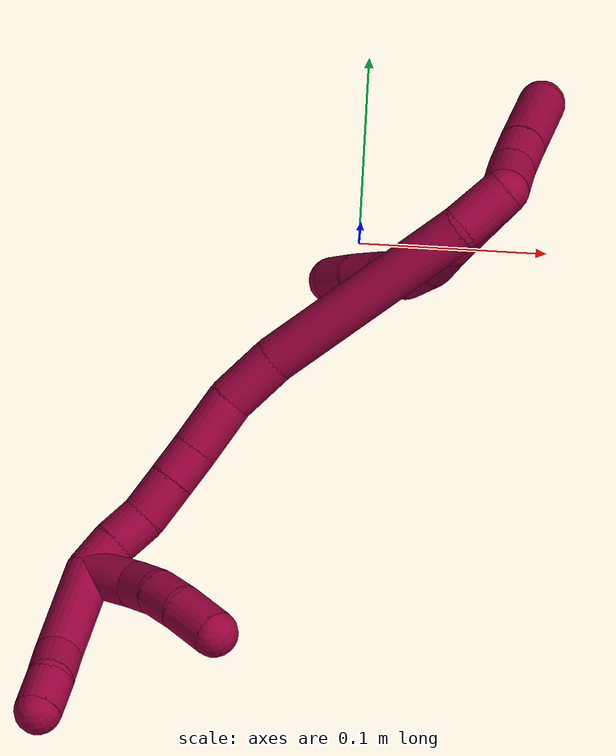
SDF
<sdf version="1.7">
 <world name="default">
  <model name="8">
   <static>0</static>
   <link name="8">
    <collision name="collision-cylinder-e_1_2_8">
     <pose>-0.000201 -0.019236 0.013253 0.967527 -0.008606 -0.004522</pose>
     <geometry><cylinder><radius>0.0125</radius><length>0.04672</length></cylinder></geometry>
     <surface>
      <friction><ode><mu>1.16</mu><mu2>1.16</mu2><slip1>0</slip1><slip2>0</slip2></ode></friction>
      <contact><ode><kp>1e+06</kp><kd>1</kd><max_vel>0</max_vel><min_depth>0.001</min_depth></ode></contact>
     </surface>
    </collision>
    <visual name="visual-cylinder-e_1_2_8">
     <pose>-0.000201 -0.019236 0.013253 0.967527 -0.008606 -0.004522</pose>
     <geometry><cylinder><radius>0.0125</radius><length>0.04672</length></cylinder></geometry>
     <material><ambient>0.584314 0 0.227451 1</ambient></material>
    </visual>
    <collision name="collision-cylinder-e_2_8_9">
     <pose>0.00108 -0.044645 0.034526 0.655912 0.145421 0.049556</pose>
     <geometry><cylinder><radius>0.0125</radius><length>0.02046</length></cylinder></geometry>
     <surface>
      <friction><ode><mu>1.16</mu><mu2>1.16</mu2><slip1>0</slip1><slip2>0</slip2></ode></friction>
      <contact><ode><kp>1e+06</kp><kd>1</kd><max_vel>0</max_vel><min_depth>0.001</min_depth></ode></contact>
     </surface>
    </collision>
    <visual name="visual-cylinder-e_2_8_9">
     <pose>0.00108 -0.044645 0.034526 0.655912 0.145421 0.049556</pose>
     <geometry><cylinder><radius>0.0125</radius><length>0.02046</length></cylinder></geometry>
     <material><ambient>0.584314 0 0.227451 1</ambient></material>
    </visual>
    <collision name="collision-cylinder-e_3_9_10">
     <pose>0.00625 -0.058132 0.04924 0.829761 0.356038 0.158163</pose>
     <geometry><cylinder><radius>0.0125</radius><length>0.021155</length></cylinder></geometry>
     <surface>
      <friction><ode><mu>1.16</mu><mu2>1.16</mu2><slip1>0</slip1><slip2>0</slip2></ode></friction>
      <contact><ode><kp>1e+06</kp><kd>1</kd><max_vel>0</max_vel><min_depth>0.001</min_depth></ode></contact>
     </surface>
    </collision>
    <visual name="visual-cylinder-e_3_9_10">
     <pose>0.00625 -0.058132 0.04924 0.829761 0.356038 0.158163</pose>
     <geometry><cylinder><radius>0.0125</radius><length>0.021155</length></cylinder></geometry>
     <material><ambient>0.584314 0 0.227451 1</ambient></material>
    </visual>
    <collision name="collision-cylinder-e_4_10_11">
     <pose>0.016457 -0.070821 0.062051 0.720698 0.675141 0.262993</pose>
     <geometry><cylinder><radius>0.0125</radius><length>0.020864</length></cylinder></geometry>
     <surface>
      <friction><ode><mu>1.16</mu><mu2>1.16</mu2><slip1>0</slip1><slip2>0</slip2></ode></friction>
      <contact><ode><kp>1e+06</kp><kd>1</kd><max_vel>0</max_vel><min_depth>0.001</min_depth></ode></contact>
     </surface>
    </collision>
    <visual name="visual-cylinder-e_4_10_11">
     <pose>0.016457 -0.070821 0.062051 0.720698 0.675141 0.262993</pose>
     <geometry><cylinder><radius>0.0125</radius><length>0.020864</length></cylinder></geometry>
     <material><ambient>0.584314 0 0.227451 1</ambient></material>
    </visual>
    <collision name="collision-cylinder-e_5_11_12">
     <pose>0.028756 -0.083135 0.073295 0.934692 0.590192 0.304414</pose>
     <geometry><cylinder><radius>0.0125</radius><length>0.020769</length></cylinder></geometry>
     <surface>
      <friction><ode><mu>1.16</mu><mu2>1.16</mu2><slip1>0</slip1><slip2>0</slip2></ode></friction>
      <contact><ode><kp>1e+06</kp><kd>1</kd><max_vel>0</max_vel><min_depth>0.001</min_depth></ode></contact>
     </surface>
    </collision>
    <visual name="visual-cylinder-e_5_11_12">
     <pose>0.028756 -0.083135 0.073295 0.934692 0.590192 0.304414</pose>
     <geometry><cylinder><radius>0.0125</radius><length>0.020769</length></cylinder></geometry>
     <material><ambient>0.584314 0 0.227451 1</ambient></material>
    </visual>
    <collision name="collision-cylinder-e_6_12_6">
     <pose>0.039825 -0.096262 0.084258 0.81449 0.556404 0.245165</pose>
     <geometry><cylinder><radius>0.0125</radius><length>0.020033</length></cylinder></geometry>
     <surface>
      <friction><ode><mu>1.16</mu><mu2>1.16</mu2><slip1>0</slip1><slip2>0</slip2></ode></friction>
      <contact><ode><kp>1e+06</kp><kd>1</kd><max_vel>0</max_vel><min_depth>0.001</min_depth></ode></contact>
     </surface>
    </collision>
    <visual name="visual-cylinder-e_6_12_6">
     <pose>0.039825 -0.096262 0.084258 0.81449 0.556404 0.245165</pose>
     <geometry><cylinder><radius>0.0125</radius><length>0.020033</length></cylinder></geometry>
     <material><ambient>0.584314 0 0.227451 1</ambient></material>
    </visual>
    <collision name="collision-cylinder-e_1_2_13">
     <pose>0.009055 0.003932 0.007437 -0.486367 0.822144 -0.215454</pose>
     <geometry><cylinder><radius>0.0125</radius><length>0.024719</length></cylinder></geometry>
     <surface>
      <friction><ode><mu>1.16</mu><mu2>1.16</mu2><slip1>0</slip1><slip2>0</slip2></ode></friction>
      <contact><ode><kp>1e+06</kp><kd>1</kd><max_vel>0</max_vel><min_depth>0.001</min_depth></ode></contact>
     </surface>
    </collision>
    <visual name="visual-cylinder-e_1_2_13">
     <pose>0.009055 0.003932 0.007437 -0.486367 0.822144 -0.215454</pose>
     <geometry><cylinder><radius>0.0125</radius><length>0.024719</length></cylinder></geometry>
     <material><ambient>0.584314 0 0.227451 1</ambient></material>
    </visual>
    <collision name="collision-cylinder-e_2_13_14">
     <pose>0.026846 0.012844 0.021621 -0.635843 0.805899 -0.278742</pose>
     <geometry><cylinder><radius>0.0125</radius><length>0.02422</length></cylinder></geometry>
     <surface>
      <friction><ode><mu>1.16</mu><mu2>1.16</mu2><slip1>0</slip1><slip2>0</slip2></ode></friction>
      <contact><ode><kp>1e+06</kp><kd>1</kd><max_vel>0</max_vel><min_depth>0.001</min_depth></ode></contact>
     </surface>
    </collision>
    <visual name="visual-cylinder-e_2_13_14">
     <pose>0.026846 0.012844 0.021621 -0.635843 0.805899 -0.278742</pose>
     <geometry><cylinder><radius>0.0125</radius><length>0.02422</length></cylinder></geometry>
     <material><ambient>0.584314 0 0.227451 1</ambient></material>
    </visual>
    <collision name="collision-cylinder-e_3_14_5">
     <pose>0.053371 0.027851 0.043693 -0.579364 0.77084 -0.240689</pose>
     <geometry><cylinder><radius>0.0125</radius><length>0.051061</length></cylinder></geometry>
     <surface>
      <friction><ode><mu>1.16</mu><mu2>1.16</mu2><slip1>0</slip1><slip2>0</slip2></ode></friction>
      <contact><ode><kp>1e+06</kp><kd>1</kd><max_vel>0</max_vel><min_depth>0.001</min_depth></ode></contact>
     </surface>
    </collision>
    <visual name="visual-cylinder-e_3_14_5">
     <pose>0.053371 0.027851 0.043693 -0.579364 0.77084 -0.240689</pose>
     <geometry><cylinder><radius>0.0125</radius><length>0.051061</length></cylinder></geometry>
     <material><ambient>0.584314 0 0.227451 1</ambient></material>
    </visual>
    <collision name="collision-cylinder-e_1_2_15">
     <pose>-0.003924 -0.014477 0.000952 1.50513 -0.264156 -0.247532</pose>
     <geometry><cylinder><radius>0.0125</radius><length>0.03006</length></cylinder></geometry>
     <surface>
      <friction><ode><mu>1.16</mu><mu2>1.16</mu2><slip1>0</slip1><slip2>0</slip2></ode></friction>
      <contact><ode><kp>1e+06</kp><kd>1</kd><max_vel>0</max_vel><min_depth>0.001</min_depth></ode></contact>
     </surface>
    </collision>
    <visual name="visual-cylinder-e_1_2_15">
     <pose>-0.003924 -0.014477 0.000952 1.50513 -0.264156 -0.247532</pose>
     <geometry><cylinder><radius>0.0125</radius><length>0.03006</length></cylinder></geometry>
     <material><ambient>0.584314 0 0.227451 1</ambient></material>
    </visual>
    <collision name="collision-cylinder-e_2_15_16">
     <pose>-0.010554 -0.087341 0.018593 1.29238 -0.044532 -0.033589</pose>
     <geometry><cylinder><radius>0.0125</radius><length>0.121569</length></cylinder></geometry>
     <surface>
      <friction><ode><mu>1.16</mu><mu2>1.16</mu2><slip1>0</slip1><slip2>0</slip2></ode></friction>
      <contact><ode><kp>1e+06</kp><kd>1</kd><max_vel>0</max_vel><min_depth>0.001</min_depth></ode></contact>
     </surface>
    </collision>
    <visual name="visual-cylinder-e_2_15_16">
     <pose>-0.010554 -0.087341 0.018593 1.29238 -0.044532 -0.033589</pose>
     <geometry><cylinder><radius>0.0125</radius><length>0.121569</length></cylinder></geometry>
     <material><ambient>0.584314 0 0.227451 1</ambient></material>
    </visual>
    <collision name="collision-cylinder-e_3_16_17">
     <pose>-0.016494 -0.16072 0.039334 1.30688 -0.205242 -0.157372</pose>
     <geometry><cylinder><radius>0.0125</radius><length>0.031729</length></cylinder></geometry>
     <surface>
      <friction><ode><mu>1.16</mu><mu2>1.16</mu2><slip1>0</slip1><slip2>0</slip2></ode></friction>
      <contact><ode><kp>1e+06</kp><kd>1</kd><max_vel>0</max_vel><min_depth>0.001</min_depth></ode></contact>
     </surface>
    </collision>
    <visual name="visual-cylinder-e_3_16_17">
     <pose>-0.016494 -0.16072 0.039334 1.30688 -0.205242 -0.157372</pose>
     <geometry><cylinder><radius>0.0125</radius><length>0.031729</length></cylinder></geometry>
     <material><ambient>0.584314 0 0.227451 1</ambient></material>
    </visual>
    <collision name="collision-cylinder-e_4_17_18">
     <pose>-0.026869 -0.18961 0.046535 1.34787 -0.464634 -0.373515</pose>
     <geometry><cylinder><radius>0.0125</radius><length>0.031876</length></cylinder></geometry>
     <surface>
      <friction><ode><mu>1.16</mu><mu2>1.16</mu2><slip1>0</slip1><slip2>0</slip2></ode></friction>
      <contact><ode><kp>1e+06</kp><kd>1</kd><max_vel>0</max_vel><min_depth>0.001</min_depth></ode></contact>
     </surface>
    </collision>
    <visual name="visual-cylinder-e_4_17_18">
     <pose>-0.026869 -0.18961 0.046535 1.34787 -0.464634 -0.373515</pose>
     <geometry><cylinder><radius>0.0125</radius><length>0.031876</length></cylinder></geometry>
     <material><ambient>0.584314 0 0.227451 1</ambient></material>
    </visual>
    <collision name="collision-cylinder-e_5_18_19">
     <pose>-0.038642 -0.212349 0.051005 1.42269 -0.477933 -0.413929</pose>
     <geometry><cylinder><radius>0.0125</radius><length>0.02014</length></cylinder></geometry>
     <surface>
      <friction><ode><mu>1.16</mu><mu2>1.16</mu2><slip1>0</slip1><slip2>0</slip2></ode></friction>
      <contact><ode><kp>1e+06</kp><kd>1</kd><max_vel>0</max_vel><min_depth>0.001</min_depth></ode></contact>
     </surface>
    </collision>
    <visual name="visual-cylinder-e_5_18_19">
     <pose>-0.038642 -0.212349 0.051005 1.42269 -0.477933 -0.413929</pose>
     <geometry><cylinder><radius>0.0125</radius><length>0.02014</length></cylinder></geometry>
     <material><ambient>0.584314 0 0.227451 1</ambient></material>
    </visual>
    <collision name="collision-cylinder-e_6_19_20">
     <pose>-0.048644 -0.231838 0.054143 1.40153 -0.461477 -0.391289</pose>
     <geometry><cylinder><radius>0.0125</radius><length>0.024121</length></cylinder></geometry>
     <surface>
      <friction><ode><mu>1.16</mu><mu2>1.16</mu2><slip1>0</slip1><slip2>0</slip2></ode></friction>
      <contact><ode><kp>1e+06</kp><kd>1</kd><max_vel>0</max_vel><min_depth>0.001</min_depth></ode></contact>
     </surface>
    </collision>
    <visual name="visual-cylinder-e_6_19_20">
     <pose>-0.048644 -0.231838 0.054143 1.40153 -0.461477 -0.391289</pose>
     <geometry><cylinder><radius>0.0125</radius><length>0.024121</length></cylinder></geometry>
     <material><ambient>0.584314 0 0.227451 1</ambient></material>
    </visual>
    <collision name="collision-cylinder-e_7_20_21">
     <pose>-0.057209 -0.252089 0.055904 1.57686 -0.321092 -0.323011</pose>
     <geometry><cylinder><radius>0.0125</radius><length>0.020248</length></cylinder></geometry>
     <surface>
      <friction><ode><mu>1.16</mu><mu2>1.16</mu2><slip1>0</slip1><slip2>0</slip2></ode></friction>
      <contact><ode><kp>1e+06</kp><kd>1</kd><max_vel>0</max_vel><min_depth>0.001</min_depth></ode></contact>
     </surface>
    </collision>
    <visual name="visual-cylinder-e_7_20_21">
     <pose>-0.057209 -0.252089 0.055904 1.57686 -0.321092 -0.323011</pose>
     <geometry><cylinder><radius>0.0125</radius><length>0.020248</length></cylinder></geometry>
     <material><ambient>0.584314 0 0.227451 1</ambient></material>
    </visual>
    <collision name="collision-cylinder-e_8_21_1">
     <pose>-0.064947 -0.270746 0.056004 1.55333 -0.465085 -0.457312</pose>
     <geometry><cylinder><radius>0.0125</radius><length>0.020257</length></cylinder></geometry>
     <surface>
      <friction><ode><mu>1.16</mu><mu2>1.16</mu2><slip1>0</slip1><slip2>0</slip2></ode></friction>
      <contact><ode><kp>1e+06</kp><kd>1</kd><max_vel>0</max_vel><min_depth>0.001</min_depth></ode></contact>
     </surface>
    </collision>
    <visual name="visual-cylinder-e_8_21_1">
     <pose>-0.064947 -0.270746 0.056004 1.55333 -0.465085 -0.457312</pose>
     <geometry><cylinder><radius>0.0125</radius><length>0.020257</length></cylinder></geometry>
     <material><ambient>0.584314 0 0.227451 1</ambient></material>
    </visual>
    <collision name="collision-cylinder-e_1_1_22">
     <pose>-0.092528 -0.294662 0.046354 2.15404 -0.912724 -1.4789</pose>
     <geometry><cylinder><radius>0.0125</radius><length>0.058237</length></cylinder></geometry>
     <surface>
      <friction><ode><mu>1.16</mu><mu2>1.16</mu2><slip1>0</slip1><slip2>0</slip2></ode></friction>
      <contact><ode><kp>1e+06</kp><kd>1</kd><max_vel>0</max_vel><min_depth>0.001</min_depth></ode></contact>
     </surface>
    </collision>
    <visual name="visual-cylinder-e_1_1_22">
     <pose>-0.092528 -0.294662 0.046354 2.15404 -0.912724 -1.4789</pose>
     <geometry><cylinder><radius>0.0125</radius><length>0.058237</length></cylinder></geometry>
     <material><ambient>0.584314 0 0.227451 1</ambient></material>
    </visual>
    <collision name="collision-cylinder-e_2_22_23">
     <pose>-0.123618 -0.313331 0.031351 2.50959 -0.896243 -1.94708</pose>
     <geometry><cylinder><radius>0.0125</radius><length>0.020621</length></cylinder></geometry>
     <surface>
      <friction><ode><mu>1.16</mu><mu2>1.16</mu2><slip1>0</slip1><slip2>0</slip2></ode></friction>
      <contact><ode><kp>1e+06</kp><kd>1</kd><max_vel>0</max_vel><min_depth>0.001</min_depth></ode></contact>
     </surface>
    </collision>
    <visual name="visual-cylinder-e_2_22_23">
     <pose>-0.123618 -0.313331 0.031351 2.50959 -0.896243 -1.94708</pose>
     <geometry><cylinder><radius>0.0125</radius><length>0.020621</length></cylinder></geometry>
     <material><ambient>0.584314 0 0.227451 1</ambient></material>
    </visual>
    <collision name="collision-cylinder-e_3_23_4">
     <pose>-0.140014 -0.322951 0.023273 2.03086 -0.90967 -1.3349</pose>
     <geometry><cylinder><radius>0.0125</radius><length>0.021142</length></cylinder></geometry>
     <surface>
      <friction><ode><mu>1.16</mu><mu2>1.16</mu2><slip1>0</slip1><slip2>0</slip2></ode></friction>
      <contact><ode><kp>1e+06</kp><kd>1</kd><max_vel>0</max_vel><min_depth>0.001</min_depth></ode></contact>
     </surface>
    </collision>
    <visual name="visual-cylinder-e_3_23_4">
     <pose>-0.140014 -0.322951 0.023273 2.03086 -0.90967 -1.3349</pose>
     <geometry><cylinder><radius>0.0125</radius><length>0.021142</length></cylinder></geometry>
     <material><ambient>0.584314 0 0.227451 1</ambient></material>
    </visual>
    <collision name="collision-cylinder-e_1_1_24">
     <pose>-0.081248 -0.26957 0.051188 -2.02344 -0.802067 1.19121</pose>
     <geometry><cylinder><radius>0.0125</radius><length>0.032718</length></cylinder></geometry>
     <surface>
      <friction><ode><mu>1.16</mu><mu2>1.16</mu2><slip1>0</slip1><slip2>0</slip2></ode></friction>
      <contact><ode><kp>1e+06</kp><kd>1</kd><max_vel>0</max_vel><min_depth>0.001</min_depth></ode></contact>
     </surface>
    </collision>
    <visual name="visual-cylinder-e_1_1_24">
     <pose>-0.081248 -0.26957 0.051188 -2.02344 -0.802067 1.19121</pose>
     <geometry><cylinder><radius>0.0125</radius><length>0.032718</length></cylinder></geometry>
     <material><ambient>0.584314 0 0.227451 1</ambient></material>
    </visual>
    <collision name="collision-cylinder-e_2_24_25">
     <pose>-0.100577 -0.254506 0.040827 -2.41008 -0.807695 1.68015</pose>
     <geometry><cylinder><radius>0.0125</radius><length>0.02095</length></cylinder></geometry>
     <surface>
      <friction><ode><mu>1.16</mu><mu2>1.16</mu2><slip1>0</slip1><slip2>0</slip2></ode></friction>
      <contact><ode><kp>1e+06</kp><kd>1</kd><max_vel>0</max_vel><min_depth>0.001</min_depth></ode></contact>
     </surface>
    </collision>
    <visual name="visual-cylinder-e_2_24_25">
     <pose>-0.100577 -0.254506 0.040827 -2.41008 -0.807695 1.68015</pose>
     <geometry><cylinder><radius>0.0125</radius><length>0.02095</length></cylinder></geometry>
     <material><ambient>0.584314 0 0.227451 1</ambient></material>
    </visual>
    <collision name="collision-cylinder-e_3_25_26">
     <pose>-0.116807 -0.245416 0.031991 -2.25197 -1.00696 1.7149</pose>
     <geometry><cylinder><radius>0.0125</radius><length>0.02049</length></cylinder></geometry>
     <surface>
      <friction><ode><mu>1.16</mu><mu2>1.16</mu2><slip1>0</slip1><slip2>0</slip2></ode></friction>
      <contact><ode><kp>1e+06</kp><kd>1</kd><max_vel>0</max_vel><min_depth>0.001</min_depth></ode></contact>
     </surface>
    </collision>
    <visual name="visual-cylinder-e_3_25_26">
     <pose>-0.116807 -0.245416 0.031991 -2.25197 -1.00696 1.7149</pose>
     <geometry><cylinder><radius>0.0125</radius><length>0.02049</length></cylinder></geometry>
     <material><ambient>0.584314 0 0.227451 1</ambient></material>
    </visual>
    <collision name="collision-cylinder-e_4_26_3">
     <pose>-0.13707 -0.235852 0.026521 -1.93464 -1.11541 1.47111</pose>
     <geometry><cylinder><radius>0.0125</radius><length>0.025842</length></cylinder></geometry>
     <surface>
      <friction><ode><mu>1.16</mu><mu2>1.16</mu2><slip1>0</slip1><slip2>0</slip2></ode></friction>
      <contact><ode><kp>1e+06</kp><kd>1</kd><max_vel>0</max_vel><min_depth>0.001</min_depth></ode></contact>
     </surface>
    </collision>
    <visual name="visual-cylinder-e_4_26_3">
     <pose>-0.13707 -0.235852 0.026521 -1.93464 -1.11541 1.47111</pose>
     <geometry><cylinder><radius>0.0125</radius><length>0.025842</length></cylinder></geometry>
     <material><ambient>0.584314 0 0.227451 1</ambient></material>
    </visual>
    <collision name="collision-sphere-3">
     <pose>-0.148675 -0.230541 0.024498 0 -0 0</pose>
     <geometry><sphere><radius>0.0125</radius></sphere></geometry>
     <surface>
      <friction><ode><mu>1.16</mu><mu2>1.16</mu2><slip1>0</slip1><slip2>0</slip2></ode></friction>
      <contact><ode><kp>1e+06</kp><kd>1</kd><max_vel>0</max_vel><min_depth>0.001</min_depth></ode></contact>
     </surface>
    </collision>
    <visual name="visual-sphere-3">
     <pose>-0.148675 -0.230541 0.024498 0 -0 0</pose>
     <geometry><sphere><radius>0.0125</radius></sphere></geometry>
     <material><ambient>0.584314 0 0.227451 1</ambient></material>
    </visual>
    <collision name="collision-sphere-26">
     <pose>-0.125466 -0.241163 0.028543 0 -0 0</pose>
     <geometry><sphere><radius>0.0125</radius></sphere></geometry>
     <surface>
      <friction><ode><mu>1.16</mu><mu2>1.16</mu2><slip1>0</slip1><slip2>0</slip2></ode></friction>
      <contact><ode><kp>1e+06</kp><kd>1</kd><max_vel>0</max_vel><min_depth>0.001</min_depth></ode></contact>
     </surface>
    </collision>
    <visual name="visual-sphere-26">
     <pose>-0.125466 -0.241163 0.028543 0 -0 0</pose>
     <geometry><sphere><radius>0.0125</radius></sphere></geometry>
     <material><ambient>0.584314 0 0.227451 1</ambient></material>
    </visual>
    <collision name="collision-sphere-25">
     <pose>-0.108148 -0.24967 0.035439 0 -0 0</pose>
     <geometry><sphere><radius>0.0125</radius></sphere></geometry>
     <surface>
      <friction><ode><mu>1.16</mu><mu2>1.16</mu2><slip1>0</slip1><slip2>0</slip2></ode></friction>
      <contact><ode><kp>1e+06</kp><kd>1</kd><max_vel>0</max_vel><min_depth>0.001</min_depth></ode></contact>
     </surface>
    </collision>
    <visual name="visual-sphere-25">
     <pose>-0.108148 -0.24967 0.035439 0 -0 0</pose>
     <geometry><sphere><radius>0.0125</radius></sphere></geometry>
     <material><ambient>0.584314 0 0.227451 1</ambient></material>
    </visual>
    <collision name="collision-sphere-24">
     <pose>-0.093007 -0.259342 0.046214 0 -0 0</pose>
     <geometry><sphere><radius>0.0125</radius></sphere></geometry>
     <surface>
      <friction><ode><mu>1.16</mu><mu2>1.16</mu2><slip1>0</slip1><slip2>0</slip2></ode></friction>
      <contact><ode><kp>1e+06</kp><kd>1</kd><max_vel>0</max_vel><min_depth>0.001</min_depth></ode></contact>
     </surface>
    </collision>
    <visual name="visual-sphere-24">
     <pose>-0.093007 -0.259342 0.046214 0 -0 0</pose>
     <geometry><sphere><radius>0.0125</radius></sphere></geometry>
     <material><ambient>0.584314 0 0.227451 1</ambient></material>
    </visual>
    <collision name="collision-sphere-4">
     <pose>-0.148357 -0.328767 0.020392 0 -0 0</pose>
     <geometry><sphere><radius>0.0125</radius></sphere></geometry>
     <surface>
      <friction><ode><mu>1.16</mu><mu2>1.16</mu2><slip1>0</slip1><slip2>0</slip2></ode></friction>
      <contact><ode><kp>1e+06</kp><kd>1</kd><max_vel>0</max_vel><min_depth>0.001</min_depth></ode></contact>
     </surface>
    </collision>
    <visual name="visual-sphere-4">
     <pose>-0.148357 -0.328767 0.020392 0 -0 0</pose>
     <geometry><sphere><radius>0.0125</radius></sphere></geometry>
     <material><ambient>0.584314 0 0.227451 1</ambient></material>
    </visual>
    <collision name="collision-sphere-23">
     <pose>-0.13167 -0.317135 0.026155 0 -0 0</pose>
     <geometry><sphere><radius>0.0125</radius></sphere></geometry>
     <surface>
      <friction><ode><mu>1.16</mu><mu2>1.16</mu2><slip1>0</slip1><slip2>0</slip2></ode></friction>
      <contact><ode><kp>1e+06</kp><kd>1</kd><max_vel>0</max_vel><min_depth>0.001</min_depth></ode></contact>
     </surface>
    </collision>
    <visual name="visual-sphere-23">
     <pose>-0.13167 -0.317135 0.026155 0 -0 0</pose>
     <geometry><sphere><radius>0.0125</radius></sphere></geometry>
     <material><ambient>0.584314 0 0.227451 1</ambient></material>
    </visual>
    <collision name="collision-sphere-22">
     <pose>-0.115566 -0.309527 0.036546 0 -0 0</pose>
     <geometry><sphere><radius>0.0125</radius></sphere></geometry>
     <surface>
      <friction><ode><mu>1.16</mu><mu2>1.16</mu2><slip1>0</slip1><slip2>0</slip2></ode></friction>
      <contact><ode><kp>1e+06</kp><kd>1</kd><max_vel>0</max_vel><min_depth>0.001</min_depth></ode></contact>
     </surface>
    </collision>
    <visual name="visual-sphere-22">
     <pose>-0.115566 -0.309527 0.036546 0 -0 0</pose>
     <geometry><sphere><radius>0.0125</radius></sphere></geometry>
     <material><ambient>0.584314 0 0.227451 1</ambient></material>
    </visual>
    <collision name="collision-sphere-1">
     <pose>-0.06949 -0.279798 0.056162 0 -0 0</pose>
     <geometry><sphere><radius>0.0125</radius></sphere></geometry>
     <surface>
      <friction><ode><mu>1.16</mu><mu2>1.16</mu2><slip1>0</slip1><slip2>0</slip2></ode></friction>
      <contact><ode><kp>1e+06</kp><kd>1</kd><max_vel>0</max_vel><min_depth>0.001</min_depth></ode></contact>
     </surface>
    </collision>
    <visual name="visual-sphere-1">
     <pose>-0.06949 -0.279798 0.056162 0 -0 0</pose>
     <geometry><sphere><radius>0.0125</radius></sphere></geometry>
     <material><ambient>0.584314 0 0.227451 1</ambient></material>
    </visual>
    <collision name="collision-sphere-21">
     <pose>-0.060404 -0.261695 0.055846 0 -0 0</pose>
     <geometry><sphere><radius>0.0125</radius></sphere></geometry>
     <surface>
      <friction><ode><mu>1.16</mu><mu2>1.16</mu2><slip1>0</slip1><slip2>0</slip2></ode></friction>
      <contact><ode><kp>1e+06</kp><kd>1</kd><max_vel>0</max_vel><min_depth>0.001</min_depth></ode></contact>
     </surface>
    </collision>
    <visual name="visual-sphere-21">
     <pose>-0.060404 -0.261695 0.055846 0 -0 0</pose>
     <geometry><sphere><radius>0.0125</radius></sphere></geometry>
     <material><ambient>0.584314 0 0.227451 1</ambient></material>
    </visual>
    <collision name="collision-sphere-12">
     <pose>0.034535 -0.090075 0.078421 0 -0 0</pose>
     <geometry><sphere><radius>0.0125</radius></sphere></geometry>
     <surface>
      <friction><ode><mu>1.16</mu><mu2>1.16</mu2><slip1>0</slip1><slip2>0</slip2></ode></friction>
      <contact><ode><kp>1e+06</kp><kd>1</kd><max_vel>0</max_vel><min_depth>0.001</min_depth></ode></contact>
     </surface>
    </collision>
    <visual name="visual-sphere-12">
     <pose>0.034535 -0.090075 0.078421 0 -0 0</pose>
     <geometry><sphere><radius>0.0125</radius></sphere></geometry>
     <material><ambient>0.584314 0 0.227451 1</ambient></material>
    </visual>
    <collision name="collision-sphere-11">
     <pose>0.022977 -0.076194 0.06817 0 -0 0</pose>
     <geometry><sphere><radius>0.0125</radius></sphere></geometry>
     <surface>
      <friction><ode><mu>1.16</mu><mu2>1.16</mu2><slip1>0</slip1><slip2>0</slip2></ode></friction>
      <contact><ode><kp>1e+06</kp><kd>1</kd><max_vel>0</max_vel><min_depth>0.001</min_depth></ode></contact>
     </surface>
    </collision>
    <visual name="visual-sphere-11">
     <pose>0.022977 -0.076194 0.06817 0 -0 0</pose>
     <geometry><sphere><radius>0.0125</radius></sphere></geometry>
     <material><ambient>0.584314 0 0.227451 1</ambient></material>
    </visual>
    <collision name="collision-sphere-10">
     <pose>0.009936 -0.065447 0.055933 0 -0 0</pose>
     <geometry><sphere><radius>0.0125</radius></sphere></geometry>
     <surface>
      <friction><ode><mu>1.16</mu><mu2>1.16</mu2><slip1>0</slip1><slip2>0</slip2></ode></friction>
      <contact><ode><kp>1e+06</kp><kd>1</kd><max_vel>0</max_vel><min_depth>0.001</min_depth></ode></contact>
     </surface>
    </collision>
    <visual name="visual-sphere-10">
     <pose>0.009936 -0.065447 0.055933 0 -0 0</pose>
     <geometry><sphere><radius>0.0125</radius></sphere></geometry>
     <material><ambient>0.584314 0 0.227451 1</ambient></material>
    </visual>
    <collision name="collision-sphere-9">
     <pose>0.002563 -0.050818 0.042548 0 -0 0</pose>
     <geometry><sphere><radius>0.0125</radius></sphere></geometry>
     <surface>
      <friction><ode><mu>1.16</mu><mu2>1.16</mu2><slip1>0</slip1><slip2>0</slip2></ode></friction>
      <contact><ode><kp>1e+06</kp><kd>1</kd><max_vel>0</max_vel><min_depth>0.001</min_depth></ode></contact>
     </surface>
    </collision>
    <visual name="visual-sphere-9">
     <pose>0.002563 -0.050818 0.042548 0 -0 0</pose>
     <geometry><sphere><radius>0.0125</radius></sphere></geometry>
     <material><ambient>0.584314 0 0.227451 1</ambient></material>
    </visual>
    <collision name="collision-sphere-2">
     <geometry><sphere><radius>0.0125</radius></sphere></geometry>
     <surface>
      <friction><ode><mu>1.16</mu><mu2>1.16</mu2><slip1>0</slip1><slip2>0</slip2></ode></friction>
      <contact><ode><kp>1e+06</kp><kd>1</kd><max_vel>0</max_vel><min_depth>0.001</min_depth></ode></contact>
     </surface>
    </collision>
    <visual name="visual-sphere-2">
     <geometry><sphere><radius>0.0125</radius></sphere></geometry>
     <material><ambient>0.584314 0 0.227451 1</ambient></material>
    </visual>
    <collision name="collision-sphere-19">
     <pose>-0.043274 -0.221193 0.052324 0 -0 0</pose>
     <geometry><sphere><radius>0.0125</radius></sphere></geometry>
     <surface>
      <friction><ode><mu>1.16</mu><mu2>1.16</mu2><slip1>0</slip1><slip2>0</slip2></ode></friction>
      <contact><ode><kp>1e+06</kp><kd>1</kd><max_vel>0</max_vel><min_depth>0.001</min_depth></ode></contact>
     </surface>
    </collision>
    <visual name="visual-sphere-19">
     <pose>-0.043274 -0.221193 0.052324 0 -0 0</pose>
     <geometry><sphere><radius>0.0125</radius></sphere></geometry>
     <material><ambient>0.584314 0 0.227451 1</ambient></material>
    </visual>
    <collision name="collision-sphere-8">
     <pose>-0.000402 -0.038472 0.026505 0 -0 0</pose>
     <geometry><sphere><radius>0.0125</radius></sphere></geometry>
     <surface>
      <friction><ode><mu>1.16</mu><mu2>1.16</mu2><slip1>0</slip1><slip2>0</slip2></ode></friction>
      <contact><ode><kp>1e+06</kp><kd>1</kd><max_vel>0</max_vel><min_depth>0.001</min_depth></ode></contact>
     </surface>
    </collision>
    <visual name="visual-sphere-8">
     <pose>-0.000402 -0.038472 0.026505 0 -0 0</pose>
     <geometry><sphere><radius>0.0125</radius></sphere></geometry>
     <material><ambient>0.584314 0 0.227451 1</ambient></material>
    </visual>
    <collision name="collision-sphere-6">
     <pose>0.045115 -0.102448 0.090095 0 -0 0</pose>
     <geometry><sphere><radius>0.0125</radius></sphere></geometry>
     <surface>
      <friction><ode><mu>1.16</mu><mu2>1.16</mu2><slip1>0</slip1><slip2>0</slip2></ode></friction>
      <contact><ode><kp>1e+06</kp><kd>1</kd><max_vel>0</max_vel><min_depth>0.001</min_depth></ode></contact>
     </surface>
    </collision>
    <visual name="visual-sphere-6">
     <pose>0.045115 -0.102448 0.090095 0 -0 0</pose>
     <geometry><sphere><radius>0.0125</radius></sphere></geometry>
     <material><ambient>0.584314 0 0.227451 1</ambient></material>
    </visual>
    <collision name="collision-sphere-13">
     <pose>0.01811 0.007864 0.014874 0 -0 0</pose>
     <geometry><sphere><radius>0.0125</radius></sphere></geometry>
     <surface>
      <friction><ode><mu>1.16</mu><mu2>1.16</mu2><slip1>0</slip1><slip2>0</slip2></ode></friction>
      <contact><ode><kp>1e+06</kp><kd>1</kd><max_vel>0</max_vel><min_depth>0.001</min_depth></ode></contact>
     </surface>
    </collision>
    <visual name="visual-sphere-13">
     <pose>0.01811 0.007864 0.014874 0 -0 0</pose>
     <geometry><sphere><radius>0.0125</radius></sphere></geometry>
     <material><ambient>0.584314 0 0.227451 1</ambient></material>
    </visual>
    <collision name="collision-sphere-14">
     <pose>0.035583 0.017824 0.028368 0 -0 0</pose>
     <geometry><sphere><radius>0.0125</radius></sphere></geometry>
     <surface>
      <friction><ode><mu>1.16</mu><mu2>1.16</mu2><slip1>0</slip1><slip2>0</slip2></ode></friction>
      <contact><ode><kp>1e+06</kp><kd>1</kd><max_vel>0</max_vel><min_depth>0.001</min_depth></ode></contact>
     </surface>
    </collision>
    <visual name="visual-sphere-14">
     <pose>0.035583 0.017824 0.028368 0 -0 0</pose>
     <geometry><sphere><radius>0.0125</radius></sphere></geometry>
     <material><ambient>0.584314 0 0.227451 1</ambient></material>
    </visual>
    <collision name="collision-sphere-5">
     <pose>0.071159 0.037877 0.059018 0 -0 0</pose>
     <geometry><sphere><radius>0.0125</radius></sphere></geometry>
     <surface>
      <friction><ode><mu>1.16</mu><mu2>1.16</mu2><slip1>0</slip1><slip2>0</slip2></ode></friction>
      <contact><ode><kp>1e+06</kp><kd>1</kd><max_vel>0</max_vel><min_depth>0.001</min_depth></ode></contact>
     </surface>
    </collision>
    <visual name="visual-sphere-5">
     <pose>0.071159 0.037877 0.059018 0 -0 0</pose>
     <geometry><sphere><radius>0.0125</radius></sphere></geometry>
     <material><ambient>0.584314 0 0.227451 1</ambient></material>
    </visual>
    <collision name="collision-sphere-15">
     <pose>-0.007849 -0.028955 0.001904 0 -0 0</pose>
     <geometry><sphere><radius>0.0125</radius></sphere></geometry>
     <surface>
      <friction><ode><mu>1.16</mu><mu2>1.16</mu2><slip1>0</slip1><slip2>0</slip2></ode></friction>
      <contact><ode><kp>1e+06</kp><kd>1</kd><max_vel>0</max_vel><min_depth>0.001</min_depth></ode></contact>
     </surface>
    </collision>
    <visual name="visual-sphere-15">
     <pose>-0.007849 -0.028955 0.001904 0 -0 0</pose>
     <geometry><sphere><radius>0.0125</radius></sphere></geometry>
     <material><ambient>0.584314 0 0.227451 1</ambient></material>
    </visual>
    <collision name="collision-sphere-16">
     <pose>-0.01326 -0.145727 0.035282 0 -0 0</pose>
     <geometry><sphere><radius>0.0125</radius></sphere></geometry>
     <surface>
      <friction><ode><mu>1.16</mu><mu2>1.16</mu2><slip1>0</slip1><slip2>0</slip2></ode></friction>
      <contact><ode><kp>1e+06</kp><kd>1</kd><max_vel>0</max_vel><min_depth>0.001</min_depth></ode></contact>
     </surface>
    </collision>
    <visual name="visual-sphere-16">
     <pose>-0.01326 -0.145727 0.035282 0 -0 0</pose>
     <geometry><sphere><radius>0.0125</radius></sphere></geometry>
     <material><ambient>0.584314 0 0.227451 1</ambient></material>
    </visual>
    <collision name="collision-sphere-17">
     <pose>-0.019727 -0.175714 0.043385 0 -0 0</pose>
     <geometry><sphere><radius>0.0125</radius></sphere></geometry>
     <surface>
      <friction><ode><mu>1.16</mu><mu2>1.16</mu2><slip1>0</slip1><slip2>0</slip2></ode></friction>
      <contact><ode><kp>1e+06</kp><kd>1</kd><max_vel>0</max_vel><min_depth>0.001</min_depth></ode></contact>
     </surface>
    </collision>
    <visual name="visual-sphere-17">
     <pose>-0.019727 -0.175714 0.043385 0 -0 0</pose>
     <geometry><sphere><radius>0.0125</radius></sphere></geometry>
     <material><ambient>0.584314 0 0.227451 1</ambient></material>
    </visual>
    <collision name="collision-sphere-18">
     <pose>-0.03401 -0.203506 0.049685 0 -0 0</pose>
     <geometry><sphere><radius>0.0125</radius></sphere></geometry>
     <surface>
      <friction><ode><mu>1.16</mu><mu2>1.16</mu2><slip1>0</slip1><slip2>0</slip2></ode></friction>
      <contact><ode><kp>1e+06</kp><kd>1</kd><max_vel>0</max_vel><min_depth>0.001</min_depth></ode></contact>
     </surface>
    </collision>
    <visual name="visual-sphere-18">
     <pose>-0.03401 -0.203506 0.049685 0 -0 0</pose>
     <geometry><sphere><radius>0.0125</radius></sphere></geometry>
     <material><ambient>0.584314 0 0.227451 1</ambient></material>
    </visual>
    <collision name="collision-sphere-20">
     <pose>-0.054014 -0.242483 0.055963 0 -0 0</pose>
     <geometry><sphere><radius>0.0125</radius></sphere></geometry>
     <surface>
      <friction><ode><mu>1.16</mu><mu2>1.16</mu2><slip1>0</slip1><slip2>0</slip2></ode></friction>
      <contact><ode><kp>1e+06</kp><kd>1</kd><max_vel>0</max_vel><min_depth>0.001</min_depth></ode></contact>
     </surface>
    </collision>
    <visual name="visual-sphere-20">
     <pose>-0.054014 -0.242483 0.055963 0 -0 0</pose>
     <geometry><sphere><radius>0.0125</radius></sphere></geometry>
     <material><ambient>0.584314 0 0.227451 1</ambient></material>
    </visual>
    <inertial>
     <pose>-0.031097 -0.13963 0.036186 0 -0 0</pose>
     <mass>0.75</mass>
     <inertia><ixx>0.000173</ixx><ixy>0</ixy><ixz>0</ixz><iyy>4.8e-05</iyy><iyz>0</iyz><izz>0.00021</izz></inertia>
    </inertial>
   </link>
   <pose>0.073548 0.018081 0.120844 3.06971 0.411228 2.03145</pose>
  </model>
 </world>
</sdf>
